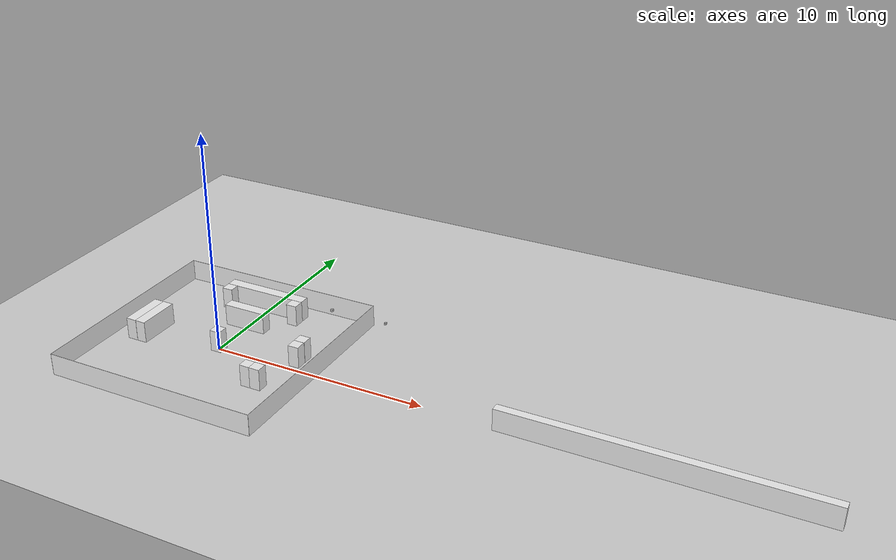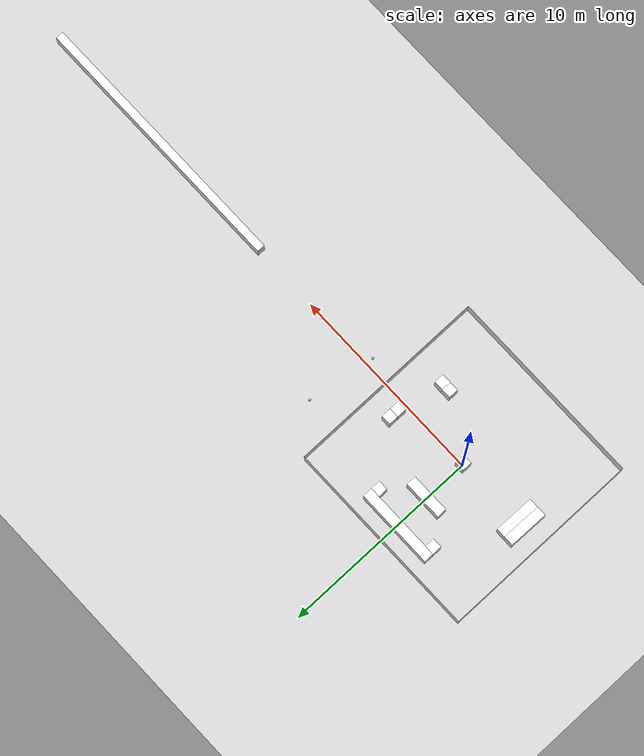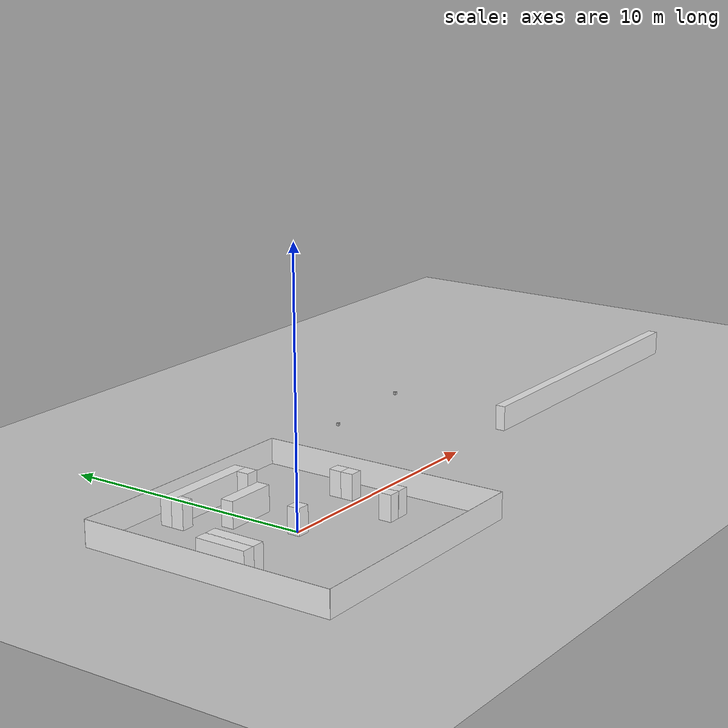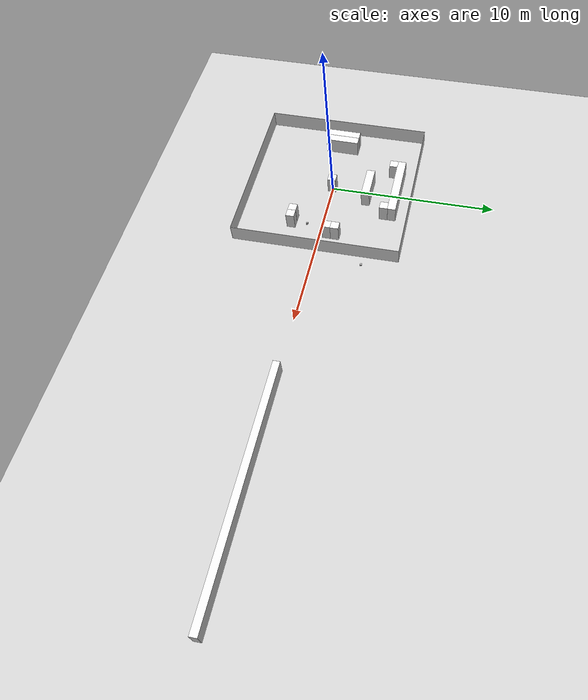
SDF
<sdf version="1.6">
 <world name="default">
  <light name="sun" type="directional">
   <cast_shadows>0</cast_shadows>
   <pose>0 0 10 0 -0 0</pose>
   <diffuse>0.8 0.8 0.8 1</diffuse>
   <specular>0.2 0.2 0.2 1</specular>
   <attenuation>
    <range>1000</range>
    <constant>0.9</constant>
    <linear>0.01</linear>
    <quadratic>0.001</quadratic>
   </attenuation>
   <direction>-0.5 0.1 -0.9</direction>
  </light>
  <model name="ground_plane">
   <pose>5 0 0 0 -0 1.57</pose>
   <static>1</static>
   <link name="link">
    <collision name="collision">
     <geometry><plane><normal>0 0 1</normal><size>100 100</size></plane></geometry>
     <surface>
      <contact><collide_bitmask>65535</collide_bitmask></contact>
      <friction><ode><mu>100</mu><mu2>50</mu2></ode></friction>
     </surface>
    </collision>
    <visual name="visual">
     <cast_shadows>0</cast_shadows>
     <geometry><plane><normal>0 0 1</normal><size>100 100</size></plane></geometry>
     <material>
      <script><uri>file://media/materials/scripts/gazebo.material</uri><name>Gazebo/Grey</name></script>
     </material>
    </visual>
   </link>
  </model>
  <gravity>0 0 -9.8</gravity>
  <magnetic_field>6e-06 2.3e-05 -4.2e-05</magnetic_field>
  <atmosphere type="adiabatic"/>
  <physics name="default_physics" default="0" type="ode">
   <max_step_size>0.001</max_step_size>
   <real_time_factor>1</real_time_factor>
   <real_time_update_rate>1000</real_time_update_rate>
  </physics>
  <scene><ambient>0.4 0.4 0.4 1</ambient><background>0.7 0.7 0.7 1</background><shadows>0</shadows></scene>
  <audio><device>default</device></audio>
  <spherical_coordinates>
   <surface_model>EARTH_WGS84</surface_model>
   <latitude_deg>0</latitude_deg>
   <longitude_deg>0</longitude_deg>
   <elevation>0</elevation>
   <heading_deg>0</heading_deg>
  </spherical_coordinates>
  <model name="table_cube_0">
   <link name="link">
    <pose>0 0 0.5 0 -0 0</pose>
    <inertial>
     <mass>10</mass>
     <inertia><ixx>0.17</ixx><ixy>0</ixy><ixz>0</ixz><iyy>0.17</iyy><iyz>0</iyz><izz>0.17</izz></inertia>
    </inertial>
    <collision name="collision">
     <geometry><box><size>10 0.01 1</size></box></geometry>
     <surface>
      <contact>
       <poissons_ratio>0.347</poissons_ratio>
       <elastic_modulus>8.8e+09</elastic_modulus>
       <ode><kp>100000</kp><kd>100</kd><max_vel>100</max_vel><min_depth>0.001</min_depth></ode>
      </contact>
     </surface>
    </collision>
    <visual name="visual">
     <geometry><box><size>10 0.01 1</size></box></geometry>
     <material>
      <script><uri>file://media/materials/scripts/gazebo.material</uri><name>Gazebo/White</name></script>
     </material>
    </visual>
   </link>
   <static>1</static>
   <pose>0 -5 0 0 -0 0</pose>
  </model>
  <model name="table_cube_1">
   <link name="link">
    <pose>0 0 0.5 0 -0 0</pose>
    <inertial>
     <mass>10</mass>
     <inertia><ixx>0.17</ixx><ixy>0</ixy><ixz>0</ixz><iyy>0.17</iyy><iyz>0</iyz><izz>0.17</izz></inertia>
    </inertial>
    <collision name="collision">
     <geometry><box><size>10 0.01 1</size></box></geometry>
     <surface>
      <contact>
       <poissons_ratio>0.347</poissons_ratio>
       <elastic_modulus>8.8e+09</elastic_modulus>
       <ode><kp>100000</kp><kd>100</kd><max_vel>100</max_vel><min_depth>0.001</min_depth></ode>
      </contact>
     </surface>
    </collision>
    <visual name="visual">
     <geometry><box><size>10 0.01 1</size></box></geometry>
     <material>
      <script><uri>file://media/materials/scripts/gazebo.material</uri><name>Gazebo/White</name></script>
     </material>
    </visual>
   </link>
   <static>1</static>
   <pose>-5 0 0 0 -0 1.57</pose>
  </model>
  <model name="table_cube_2">
   <link name="link">
    <pose>0 0 0.5 0 -0 0</pose>
    <inertial>
     <mass>10</mass>
     <inertia><ixx>0.17</ixx><ixy>0</ixy><ixz>0</ixz><iyy>0.17</iyy><iyz>0</iyz><izz>0.17</izz></inertia>
    </inertial>
    <collision name="collision">
     <geometry><box><size>10 0.01 1</size></box></geometry>
     <surface>
      <contact>
       <poissons_ratio>0.347</poissons_ratio>
       <elastic_modulus>8.8e+09</elastic_modulus>
       <ode><kp>100000</kp><kd>100</kd><max_vel>100</max_vel><min_depth>0.001</min_depth></ode>
      </contact>
     </surface>
    </collision>
    <visual name="visual">
     <geometry><box><size>10 0.01 1</size></box></geometry>
     <material>
      <script><uri>file://media/materials/scripts/gazebo.material</uri><name>Gazebo/White</name></script>
     </material>
    </visual>
   </link>
   <static>1</static>
   <pose>0 5 0 0 -0 0</pose>
  </model>
  <model name="table_cube_4">
   <link name="link">
    <pose>0 0 0.5 0 -0 0</pose>
    <inertial>
     <mass>10</mass>
     <inertia><ixx>0.17</ixx><ixy>0</ixy><ixz>0</ixz><iyy>0.17</iyy><iyz>0</iyz><izz>0.17</izz></inertia>
    </inertial>
    <collision name="collision">
     <geometry><box><size>10 0.01 1</size></box></geometry>
     <surface>
      <contact>
       <poissons_ratio>0.347</poissons_ratio>
       <elastic_modulus>8.8e+09</elastic_modulus>
       <ode><kp>100000</kp><kd>100</kd><max_vel>100</max_vel><min_depth>0.001</min_depth></ode>
      </contact>
     </surface>
    </collision>
    <visual name="visual">
     <geometry><box><size>10 0.01 1</size></box></geometry>
     <material>
      <script><uri>file://media/materials/scripts/gazebo.material</uri><name>Gazebo/White</name></script>
     </material>
    </visual>
   </link>
   <static>1</static>
   <pose>5 0 0 0 -0 1.57</pose>
  </model>
  <model name="table_cube_3">
   <link name="link">
    <pose>0 0 0.5 0 -0 0</pose>
    <inertial>
     <mass>10</mass>
     <inertia><ixx>0.17</ixx><ixy>0</ixy><ixz>0</ixz><iyy>0.17</iyy><iyz>0</iyz><izz>0.17</izz></inertia>
    </inertial>
    <collision name="collision">
     <geometry><box><size>13.5 0.4 1</size></box></geometry>
     <surface>
      <contact>
       <poissons_ratio>0.347</poissons_ratio>
       <elastic_modulus>8.8e+09</elastic_modulus>
       <ode><kp>100000</kp><kd>100</kd><max_vel>100</max_vel><min_depth>0.001</min_depth></ode>
      </contact>
     </surface>
    </collision>
    <visual name="visual">
     <geometry><box><size>13.5 0.4 1</size></box></geometry>
     <material>
      <script><uri>file://media/materials/scripts/gazebo.material</uri><name>Gazebo/White</name></script>
     </material>
    </visual>
   </link>
   <static>1</static>
   <pose>20 0 0 0 -0 0</pose>
  </model>
  <model name="distorted_camera">
   <link name="link">
    <pose>0.05 0.05 0.05 0 -0 0</pose>
    <inertial>
     <mass>0.1</mass>
     <inertia>
      <ixx>0.000166667</ixx>
      <iyy>0.000166667</iyy>
      <izz>0.000166667</izz>
      <ixy>0</ixy>
      <ixz>0</ixz>
      <iyz>0</iyz>
     </inertia>
    </inertial>
    <collision name="collision"><geometry><box><size>0.1 0.1 0.1</size></box></geometry></collision>
    <visual name="visual"><geometry><box><size>0.1 0.1 0.1</size></box></geometry></visual>
    <gravity>0</gravity>
    <sensor name="camera" type="camera">
     <camera name="__default__">
      <horizontal_fov>1.047</horizontal_fov>
      <image><width>64</width><height>64</height></image>
      <clip><near>0.1</near><far>100</far></clip>
     </camera>
     <plugin name="camera_controller" filename="libgazebo_ros_camera.so">
      <alwaysOn>1</alwaysOn>
      <updateRate>0.0</updateRate>
      <cameraName>top_down_cam</cameraName>
      <imageTopicName>image_raw</imageTopicName>
      <cameraInfoTopicName>camera_info</cameraInfoTopicName>
      <frameName>camera_link</frameName>
      <hackBaseline>0.07</hackBaseline>
      <distortionK1>0.0</distortionK1>
      <distortionK2>0.0</distortionK2>
      <distortionK3>0.0</distortionK3>
      <distortionT1>0.0</distortionT1>
      <distortionT2>0.0</distortionT2>
     </plugin>
     <always_on>1</always_on>
     <update_rate>30</update_rate>
     <visualize>1</visualize>
    </sensor>
   </link>
   <pose>5.93267 -0.004724 3.46489 2.4e-05 1.57 1.57002</pose>
  </model>
  <model name="table_cube_0_0">
   <link name="link">
    <pose>0 0 0.5 0 -0 0</pose>
    <inertial>
     <mass>10</mass>
     <inertia><ixx>0.17</ixx><ixy>0</ixy><ixz>0</ixz><iyy>0.17</iyy><iyz>0</iyz><izz>0.17</izz></inertia>
    </inertial>
    <collision name="collision">
     <geometry><box><size>0.5 0.5 1</size></box></geometry>
     <surface>
      <contact>
       <poissons_ratio>0.347</poissons_ratio>
       <elastic_modulus>8.8e+09</elastic_modulus>
       <ode><kp>100000</kp><kd>100</kd><max_vel>100</max_vel><min_depth>0.001</min_depth></ode>
      </contact>
     </surface>
    </collision>
    <visual name="visual">
     <geometry><box><size>0.5 0.5 1</size></box></geometry>
     <material>
      <script><uri>file://media/materials/scripts/gazebo.material</uri><name>Gazebo/White</name></script>
     </material>
    </visual>
   </link>
   <static>1</static>
  </model>
  <model name="distorted_camera_clone">
   <link name="link">
    <pose>0.05 0.05 0.05 0 -0 0</pose>
    <inertial>
     <mass>0.1</mass>
     <inertia>
      <ixx>0.000166667</ixx>
      <iyy>0.000166667</iyy>
      <izz>0.000166667</izz>
      <ixy>0</ixy>
      <ixz>0</ixz>
      <iyz>0</iyz>
     </inertia>
    </inertial>
    <collision name="collision"><geometry><box><size>0.1 0.1 0.1</size></box></geometry></collision>
    <visual name="visual"><geometry><box><size>0.1 0.1 0.1</size></box></geometry></visual>
    <gravity>0</gravity>
    <sensor name="camera" type="camera">
     <camera name="__default__">
      <horizontal_fov>1.047</horizontal_fov>
      <image><width>1024</width><height>1024</height></image>
      <clip><near>0.1</near><far>100</far></clip>
     </camera>
     <plugin name="camera_controller" filename="libgazebo_ros_camera.so">
      <alwaysOn>1</alwaysOn>
      <updateRate>0.0</updateRate>
      <cameraName>top_down_cam</cameraName>
      <imageTopicName>image_goal</imageTopicName>
      <cameraInfoTopicName>camera_info</cameraInfoTopicName>
      <frameName>camera_link</frameName>
      <hackBaseline>0.07</hackBaseline>
      <distortionK1>0.0</distortionK1>
      <distortionK2>0.0</distortionK2>
      <distortionK3>0.0</distortionK3>
      <distortionT1>0.0</distortionT1>
      <distortionT2>0.0</distortionT2>
     </plugin>
     <always_on>1</always_on>
     <update_rate>30</update_rate>
     <visualize>1</visualize>
    </sensor>
   </link>
   <pose>6.70578 3.08238 1.5 0.000402 1.57 1.57039</pose>
  </model>
  <model name="table_cube_0_1">
   <link name="link">
    <pose>0 0 0.5 0 -0 0</pose>
    <inertial>
     <mass>10</mass>
     <inertia><ixx>0.17</ixx><ixy>0</ixy><ixz>0</ixz><iyy>0.17</iyy><iyz>0</iyz><izz>0.17</izz></inertia>
    </inertial>
    <collision name="collision">
     <geometry><box><size>2 0.5 1</size></box></geometry>
     <surface>
      <contact>
       <poissons_ratio>0.347</poissons_ratio>
       <elastic_modulus>8.8e+09</elastic_modulus>
       <ode><kp>100000</kp><kd>100</kd><max_vel>100</max_vel><min_depth>0.001</min_depth></ode>
      </contact>
     </surface>
    </collision>
    <visual name="visual">
     <geometry><box><size>2 0.5 1</size></box></geometry>
     <material>
      <script><uri>file://media/materials/scripts/gazebo.material</uri><name>Gazebo/White</name></script>
     </material>
    </visual>
   </link>
   <static>1</static>
   <pose>-6.3e-05 2.24743 0 0 -0 0</pose>
  </model>
  <model name="table_cube_0_2">
   <link name="link">
    <pose>0 0 0.5 0 -0 0</pose>
    <inertial>
     <mass>10</mass>
     <inertia><ixx>0.17</ixx><ixy>0</ixy><ixz>0</ixz><iyy>0.17</iyy><iyz>0</iyz><izz>0.17</izz></inertia>
    </inertial>
    <collision name="collision">
     <geometry><box><size>4 0.5 1</size></box></geometry>
     <surface>
      <contact>
       <poissons_ratio>0.347</poissons_ratio>
       <elastic_modulus>8.8e+09</elastic_modulus>
       <ode><kp>100000</kp><kd>100</kd><max_vel>100</max_vel><min_depth>0.001</min_depth></ode>
      </contact>
     </surface>
    </collision>
    <visual name="visual">
     <geometry><box><size>4 0.5 1</size></box></geometry>
     <material>
      <script><uri>file://media/materials/scripts/gazebo.material</uri><name>Gazebo/White</name></script>
     </material>
    </visual>
   </link>
   <static>1</static>
   <pose>-0.066877 4.02537 0 0 -0 0</pose>
  </model>
  <model name="table_cube_0_0_clone">
   <link name="link">
    <pose>0 0 0.5 0 -0 0</pose>
    <inertial>
     <mass>10</mass>
     <inertia><ixx>0.17</ixx><ixy>0</ixy><ixz>0</ixz><iyy>0.17</iyy><iyz>0</iyz><izz>0.17</izz></inertia>
    </inertial>
    <collision name="collision">
     <geometry><box><size>0.5 0.5 1</size></box></geometry>
     <surface>
      <contact>
       <poissons_ratio>0.347</poissons_ratio>
       <elastic_modulus>8.8e+09</elastic_modulus>
       <ode><kp>100000</kp><kd>100</kd><max_vel>100</max_vel><min_depth>0.001</min_depth></ode>
      </contact>
     </surface>
    </collision>
    <visual name="visual">
     <geometry><box><size>0.5 0.5 1</size></box></geometry>
     <material>
      <script><uri>file://media/materials/scripts/gazebo.material</uri><name>Gazebo/White</name></script>
     </material>
    </visual>
   </link>
   <static>1</static>
   <pose>-1.81797 3.54666 0 0 -0 0</pose>
  </model>
  <model name="table_cube_0_0_clone_clone">
   <link name="link">
    <pose>0 0 0.5 0 -0 0</pose>
    <inertial>
     <mass>10</mass>
     <inertia><ixx>0.17</ixx><ixy>0</ixy><ixz>0</ixz><iyy>0.17</iyy><iyz>0</iyz><izz>0.17</izz></inertia>
    </inertial>
    <collision name="collision">
     <geometry><box><size>0.5 0.5 1</size></box></geometry>
     <surface>
      <contact>
       <poissons_ratio>0.347</poissons_ratio>
       <elastic_modulus>8.8e+09</elastic_modulus>
       <ode><kp>100000</kp><kd>100</kd><max_vel>100</max_vel><min_depth>0.001</min_depth></ode>
      </contact>
     </surface>
    </collision>
    <visual name="visual">
     <geometry><box><size>0.5 0.5 1</size></box></geometry>
     <material>
      <script><uri>file://media/materials/scripts/gazebo.material</uri><name>Gazebo/White</name></script>
     </material>
    </visual>
   </link>
   <static>1</static>
   <pose>1.68479 3.53841 0 0 -0 0</pose>
  </model>
  <model name="table_cube_0_1_clone">
   <link name="link">
    <pose>0 0 0.5 0 -0 0</pose>
    <inertial>
     <mass>10</mass>
     <inertia><ixx>0.17</ixx><ixy>0</ixy><ixz>0</ixz><iyy>0.17</iyy><iyz>0</iyz><izz>0.17</izz></inertia>
    </inertial>
    <collision name="collision">
     <geometry><box><size>2 0.5 1</size></box></geometry>
     <surface>
      <contact>
       <poissons_ratio>0.347</poissons_ratio>
       <elastic_modulus>8.8e+09</elastic_modulus>
       <ode><kp>100000</kp><kd>100</kd><max_vel>100</max_vel><min_depth>0.001</min_depth></ode>
      </contact>
     </surface>
    </collision>
    <visual name="visual">
     <geometry><box><size>2 0.5 1</size></box></geometry>
     <material>
      <script><uri>file://media/materials/scripts/gazebo.material</uri><name>Gazebo/White</name></script>
     </material>
    </visual>
   </link>
   <static>1</static>
   <pose>-3.43893 -0.052962 0 0 0 -1.58312</pose>
  </model>
  <model name="table_cube_0_1_clone_clone">
   <link name="link">
    <pose>0 0 0.5 0 -0 0</pose>
    <inertial>
     <mass>10</mass>
     <inertia><ixx>0.17</ixx><ixy>0</ixy><ixz>0</ixz><iyy>0.17</iyy><iyz>0</iyz><izz>0.17</izz></inertia>
    </inertial>
    <collision name="collision">
     <geometry><box><size>2 0.5 1</size></box></geometry>
     <surface>
      <contact>
       <poissons_ratio>0.347</poissons_ratio>
       <elastic_modulus>8.8e+09</elastic_modulus>
       <ode><kp>100000</kp><kd>100</kd><max_vel>100</max_vel><min_depth>0.001</min_depth></ode>
      </contact>
     </surface>
    </collision>
    <visual name="visual">
     <geometry><box><size>2 0.5 1</size></box></geometry>
     <material>
      <script><uri>file://media/materials/scripts/gazebo.material</uri><name>Gazebo/White</name></script>
     </material>
    </visual>
   </link>
   <static>1</static>
   <pose>-3.91451 -0.051663 0 0 0 -1.58312</pose>
  </model>
  <model name="table_cube_0_0_clone_0">
   <link name="link">
    <pose>0 0 0.5 0 -0 0</pose>
    <inertial>
     <mass>10</mass>
     <inertia><ixx>0.17</ixx><ixy>0</ixy><ixz>0</ixz><iyy>0.17</iyy><iyz>0</iyz><izz>0.17</izz></inertia>
    </inertial>
    <collision name="collision">
     <geometry><box><size>0.5 0.5 1</size></box></geometry>
     <surface>
      <contact>
       <poissons_ratio>0.347</poissons_ratio>
       <elastic_modulus>8.8e+09</elastic_modulus>
       <ode><kp>100000</kp><kd>100</kd><max_vel>100</max_vel><min_depth>0.001</min_depth></ode>
      </contact>
     </surface>
    </collision>
    <visual name="visual">
     <geometry><box><size>0.5 0.5 1</size></box></geometry>
     <material>
      <script><uri>file://media/materials/scripts/gazebo.material</uri><name>Gazebo/White</name></script>
     </material>
    </visual>
   </link>
   <static>1</static>
   <pose>3.73639 0.978749 0 0 -0 0</pose>
  </model>
  <model name="table_cube_0_0_clone_0_clone">
   <link name="link">
    <pose>0 0 0.5 0 -0 0</pose>
    <inertial>
     <mass>10</mass>
     <inertia><ixx>0.17</ixx><ixy>0</ixy><ixz>0</ixz><iyy>0.17</iyy><iyz>0</iyz><izz>0.17</izz></inertia>
    </inertial>
    <collision name="collision">
     <geometry><box><size>0.5 0.5 1</size></box></geometry>
     <surface>
      <contact>
       <poissons_ratio>0.347</poissons_ratio>
       <elastic_modulus>8.8e+09</elastic_modulus>
       <ode><kp>100000</kp><kd>100</kd><max_vel>100</max_vel><min_depth>0.001</min_depth></ode>
      </contact>
     </surface>
    </collision>
    <visual name="visual">
     <geometry><box><size>0.5 0.5 1</size></box></geometry>
     <material>
      <script><uri>file://media/materials/scripts/gazebo.material</uri><name>Gazebo/White</name></script>
     </material>
    </visual>
   </link>
   <static>1</static>
   <pose>3.73146 0.477109 0 0 -0 0</pose>
  </model>
  <model name="table_cube_0_0_clone_0_clone_clone">
   <link name="link">
    <pose>0 0 0.5 0 -0 0</pose>
    <inertial>
     <mass>10</mass>
     <inertia><ixx>0.17</ixx><ixy>0</ixy><ixz>0</ixz><iyy>0.17</iyy><iyz>0</iyz><izz>0.17</izz></inertia>
    </inertial>
    <collision name="collision">
     <geometry><box><size>0.5 0.5 1</size></box></geometry>
     <surface>
      <contact>
       <poissons_ratio>0.347</poissons_ratio>
       <elastic_modulus>8.8e+09</elastic_modulus>
       <ode><kp>100000</kp><kd>100</kd><max_vel>100</max_vel><min_depth>0.001</min_depth></ode>
      </contact>
     </surface>
    </collision>
    <visual name="visual">
     <geometry><box><size>0.5 0.5 1</size></box></geometry>
     <material>
      <script><uri>file://media/materials/scripts/gazebo.material</uri><name>Gazebo/White</name></script>
     </material>
    </visual>
   </link>
   <static>1</static>
   <pose>3.26619 -1.80271 0 0 -0 0</pose>
  </model>
  <model name="table_cube_0_0_clone_0_clone_0">
   <link name="link">
    <pose>0 0 0.5 0 -0 0</pose>
    <inertial>
     <mass>10</mass>
     <inertia><ixx>0.17</ixx><ixy>0</ixy><ixz>0</ixz><iyy>0.17</iyy><iyz>0</iyz><izz>0.17</izz></inertia>
    </inertial>
    <collision name="collision">
     <geometry><box><size>0.5 0.5 1</size></box></geometry>
     <surface>
      <contact>
       <poissons_ratio>0.347</poissons_ratio>
       <elastic_modulus>8.8e+09</elastic_modulus>
       <ode><kp>100000</kp><kd>100</kd><max_vel>100</max_vel><min_depth>0.001</min_depth></ode>
      </contact>
     </surface>
    </collision>
    <visual name="visual">
     <geometry><box><size>0.5 0.5 1</size></box></geometry>
     <material>
      <script><uri>file://media/materials/scripts/gazebo.material</uri><name>Gazebo/White</name></script>
     </material>
    </visual>
   </link>
   <static>1</static>
   <pose>2.80198 -1.80058 0 0 -0 0</pose>
  </model>
 </world>
</sdf>
